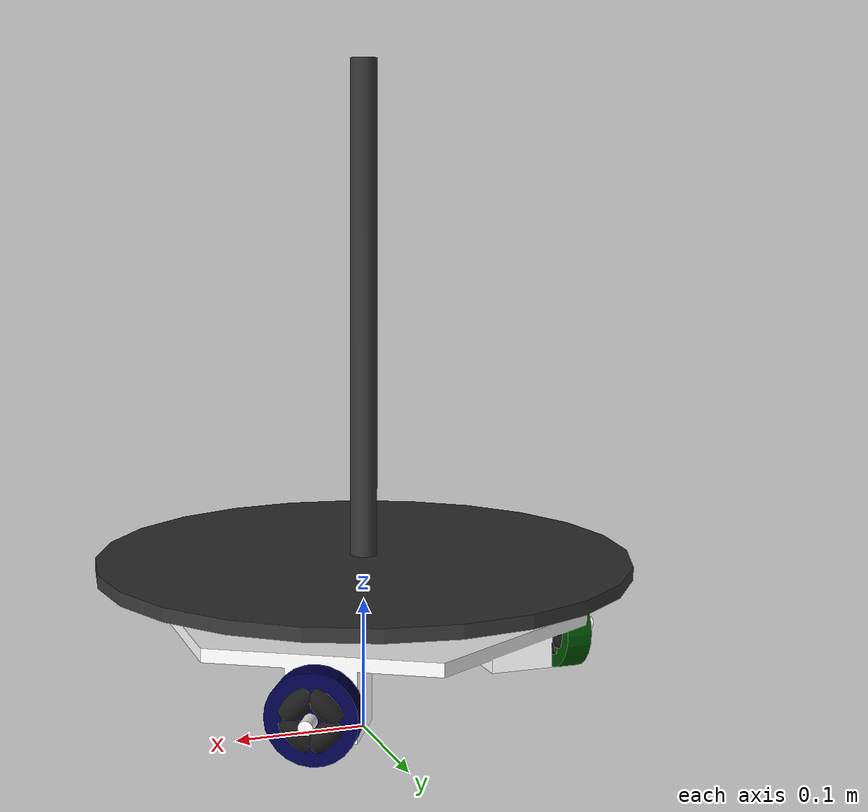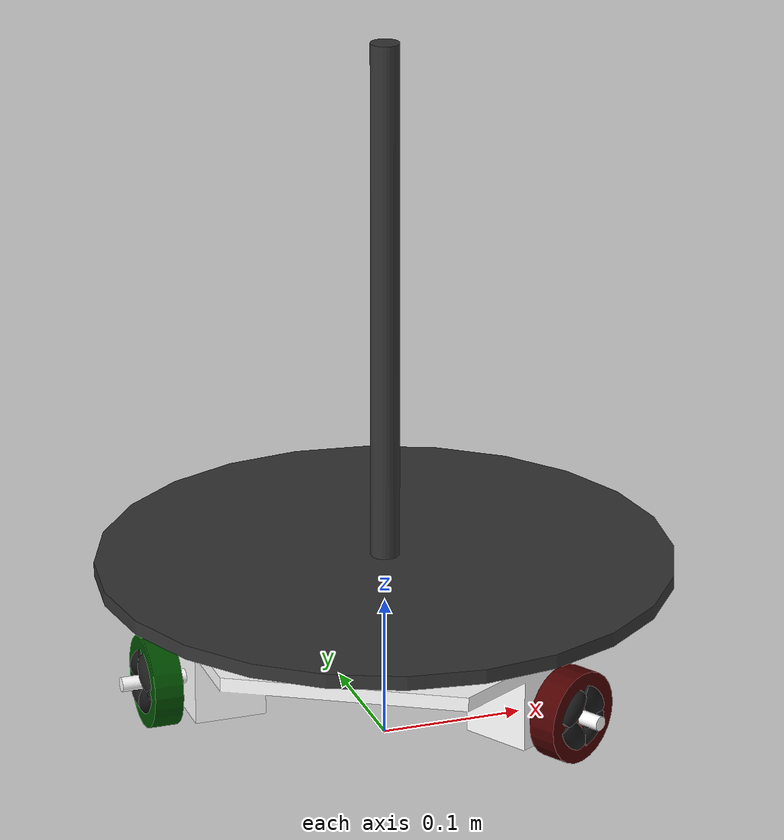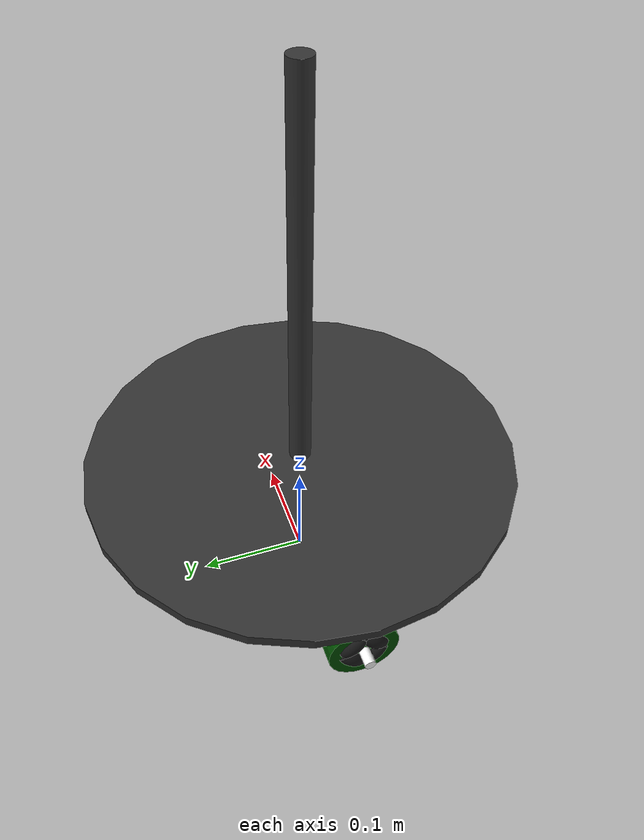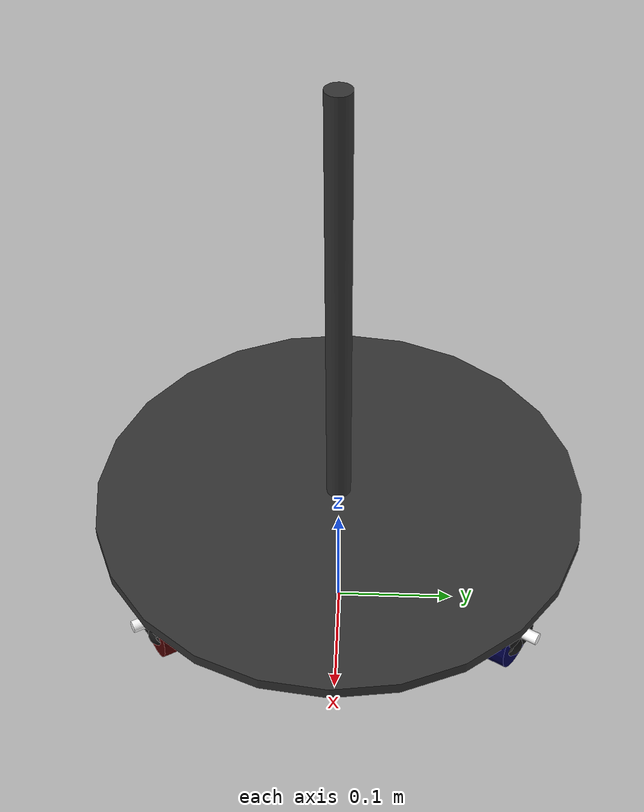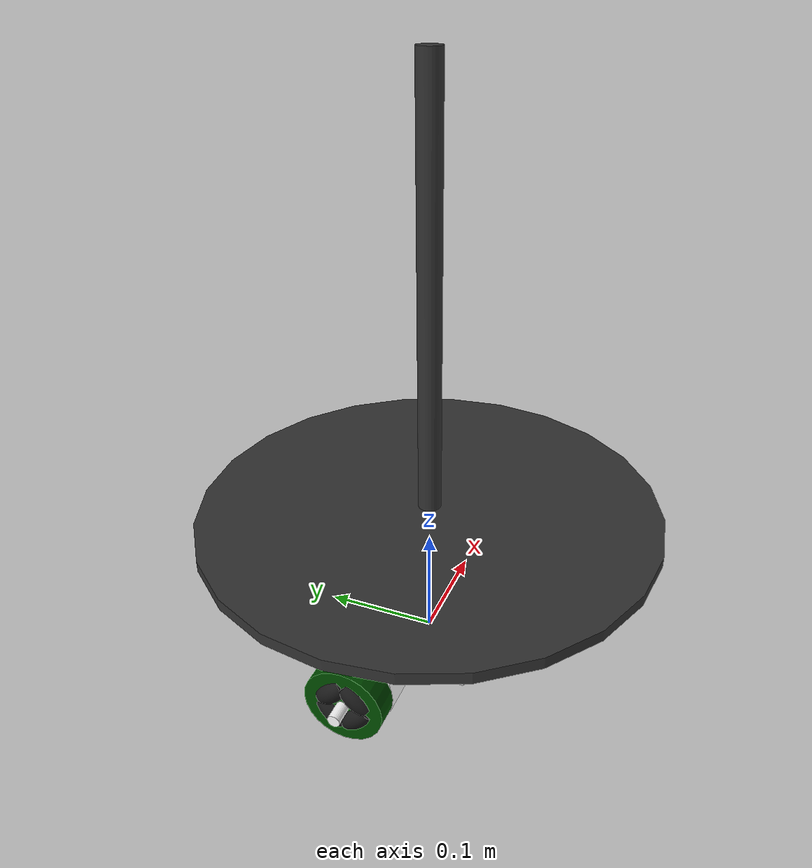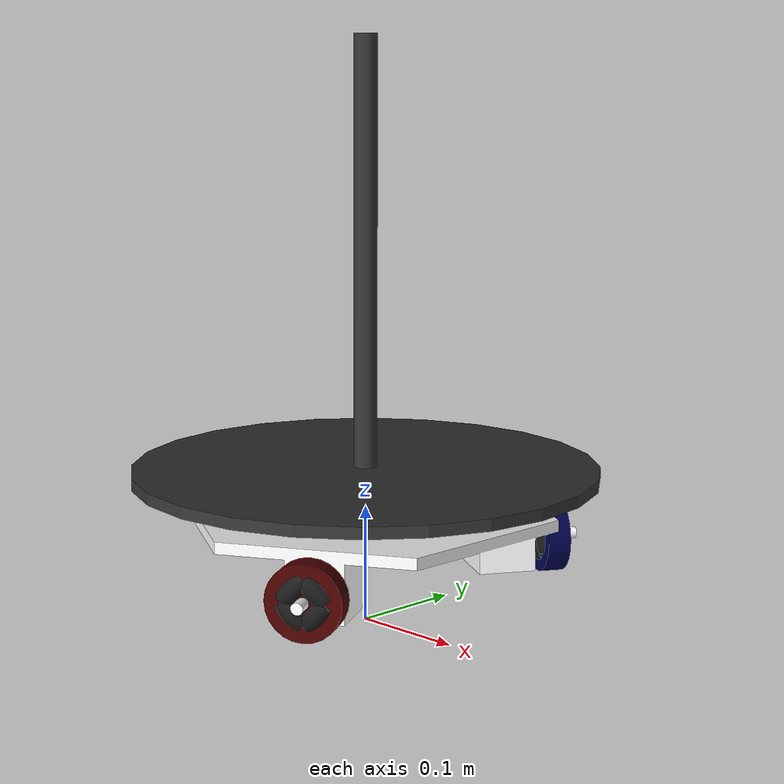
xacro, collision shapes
<?xml version="1.0"?>
<robot xmlns:xacro="http://www.ros.org/wiki/xacro" name="triskarino">

	<xacro:include filename="$(find triskarino_description)/urdf/rim.urdf.xacro"/>
    <xacro:include filename="$(find triskarino_description)/urdf/base.urdf.xacro"/>
    <xacro:include filename="$(find triskarino_description)/urdf/triskarino_cylinder.xacro"/>
    <xacro:include filename="$(find triskarino_description)/urdf/materials.xacro"/>
    <xacro:include filename="$(find triskarino_description)/urdf/hokuyo.xacro"/>

    <link name="base_link"/>

    <!-- BASE PLATE -->
    <xacro:base
        xyz="0 0 0.1"
        scale_factor="0.001"
        rpy="0 3.14 -1.570796326794896"
        />

    <joint name="base_footprint_joint" type="fixed">
        <parent link="base_link"/>
        <child link="base_footprint"/>
        <origin xyz="0 0 0" rpy="0 0 0"/>
    </joint>

    <link name="base_footprint"></link>

    <!-- LEFT WHEEL -->
	<xacro:rim_macro
		name="left"
		color="0.3 0 0"
		xyz="0.0825 -0.142894191624 -0.035"
		rpy="1.570796326794896 0 -2.61799387799"
        />

    <!-- BACK WHEEL -->
	<xacro:rim_macro
		name="back"
		color="0 0.3 0"
		xyz="-0.1650 0 -0.035"
		rpy="1.570796326794896 0 1.570796326794896"
        />

    <!-- RIGHT WHEEL -->
	<xacro:rim_macro
		name="right"
		color="0 0 0.3"
		xyz="0.0825 0.142894191624 -0.035"
		rpy="1.570796326794896 0 -0.52359877559"
        />

    <!-- CYLINDER USED AS AXIS FOR THE ROBOT, Z HAS TO BE ADJUSTED ACCORDING TO THE LENGTH OF THE AXIS -->
    <xacro:cylinder
        name="axis"
        xyz="0 0 0.2"
        rpy="0 0 0"
        parent="plate_link"
        color="grey"
        radius="0.01"
        length="0.4"
        mass="1"
        />

    <!-- FIRST CYLINDER SET AT THE BASE OF THE LIDAR -->
    <xacro:cylinder
        name="layer_0"
        xyz="0 0 -0.17"
        rpy="0 0 0"
        parent="axis_link"
        color="grey"
        radius="0.2"
        length="0.01"
        mass="1"
        />

    <xacro:hokuyo_ust10_mount
        topic="scan"
        parent_link="layer_0_link"
        xyz="0.11 0 0"
        rpy="0 0 0"
    />

    <link name="imu_link">
    </link>
    <joint
        name="imu_joint"
        type="fixed">
        <origin
          xyz="0 0 0"
          rpy="0 0 0" />
        <parent
          link="laser_mount" />
        <child
          link="imu_link" />
        <axis
          xyz="0 0 0" />
      </joint>

    <joint name="camera_joint" type="fixed">
        <parent link="layer_0_link"/>
        <child link="camera_link"/>
        <origin xyz="0.2 0 0" rpy="0 0 0"/>
    </joint>

    <link name="camera_link">
        <visual>
            <geometry>
                <box size="0.010 0.03 0.03"/>
            </geometry>
            <material name="red"/>
        </visual>
    </link>

	<gazebo reference="plate_link">
    		<material>Gazebo/White</material>
  	</gazebo>

    <gazebo reference="base_link">
		<mu1 value="0.0"/>
		<mu2 value="0.0"/>
  	</gazebo>

	<gazebo>
        <plugin name="triskarino_controller" filename="libgazebo_ros_planar_move.so">
            <commandTopic>/cmd_vel</commandTopic>
            <odometryTopic>/odom</odometryTopic>
            <odometryFrame>/odom</odometryFrame>
            <odometryRate>0</odometryRate>
            <robotBaseFrame>base_link</robotBaseFrame>
        </plugin>

    </gazebo>

</robot>

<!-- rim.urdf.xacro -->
<robot xmlns:xacro="http://www.ros.org/wiki/xacro">

<xacro:include filename="$(find triskarino_description)/urdf/roller.urdf.xacro"/>
<xacro:include filename="$(find triskarino_description)/urdf/inertial_macros.xacro"/>

<xacro:macro
	name="rim_macro"
	params="name color xyz rpy">

		<joint name="rim_${name}_joint" type="fixed">
			<parent link="plate_link" />
			<child link="rim_${name}_link"/>
			<axis xyz="0 0 1"/>
			<origin xyz="${xyz}" rpy="${rpy}"/>

		</joint>

		<link name="rim_${name}_link">
			<inertial>
				<origin xyz="-0.00000435 -0.00000262 -0.00011790"/>
				<mass value="0.20000000"/>
				<inertia ixx="0.00005620" ixy="-0.00000000" ixz="0.00000000" iyy="0.00005620" iyz="-0.00000000" izz="0.00007735"/>
			  </inertial>
			<visual>
				<geometry>
					<mesh filename="package://triskarino_description/meshes/rim_scaled.stl"/>
				</geometry>
				<material name="rim_${name}_material">
					<color rgba="${color} 1"/>
				</material>
			</visual>
			<collision>
				<origin xyz="0 0 0" rpy="0 0 0" />
				<geometry>
					<cylinder length="0.02" radius="0.032" />
				</geometry>
				<surface>
					<bounce restitution_coefficient="0.0001" />
				</surface>
			</collision>
		</link>

		<xacro:roller_macro
			parent="rim_${name}_link"
			name="e"
			xyz="0.01355 0 0.0055"
			rpy="-1.570796326794896 0 0"
		/>
		<xacro:roller_macro
			parent="rim_${name}_link"
			name="ne"
			xyz="0.00958129689 0.00958129689 -0.0055"
			rpy="-1.570796326794896 0 0.7853981633974483"
		/>
		<xacro:roller_macro
			parent="rim_${name}_link"
			name="n"
			xyz="0 0.01355 0.0055"
			rpy="-1.570796326794896 0 1.570796326794896"
		/>
		<xacro:roller_macro
			parent="rim_${name}_link"
			name="nw"
			xyz="-0.00958129689 0.00958129689 -0.0055"
			rpy="-1.570796326794896 0 2.356194490192345"
		/>
		<xacro:roller_macro
			parent="rim_${name}_link"
			name="w"
			xyz="-0.01355 0 0.0055"
			rpy="-1.570796326794896 0 3.141592653589793"
		/>
		<xacro:roller_macro
			parent="rim_${name}_link"
			name="sw"
			xyz="-0.00958129689 -0.00958129689 -0.0055"
			rpy="-1.570796326794896 0 -2.356194490192345"
		/>
		<xacro:roller_macro
			parent="rim_${name}_link"
			name="s"
			xyz="0 -0.01355 0.0055"
			rpy="-1.570796326794896 0 -1.570796326794896"
		/>
		<xacro:roller_macro
			parent="rim_${name}_link"
			name="se"
			xyz="0.00958129689 -0.00958129689 -0.0055"
			rpy="-1.570796326794896 0 -0.7853981633974483"
		/>

		<transmission name="rim_${name}_transmission">
			<type>transmission_interface/SimpleTransmission</type>
			<joint name="rim_${name}_joint">
				<hardwareInterface>hardware_interface/VelocityJointInterface</hardwareInterface>
			</joint>
			<actuator name="rim_${name}_motor">
				<hardwareInterface>hardware_interface/VelocityJointInterface</hardwareInterface>
				<mechanicalReduction>1</mechanicalReduction>
			</actuator>
		</transmission>

	<gazebo reference="rim_${name}_link">
		<collision name="rim_${name}_link_collision">
			<surface>
			  <contact>
                <ode>
                  <kp>1e+6</kp>
                  <kd>1</kd>
                  <min_depth>0.00001</min_depth>
                </ode>
			  </contact>
			  <friction>
				<ode>
				<mu>0</mu>
				<mu2>0</mu2>
				<max_contacts>2</max_contacts>
				<fdir1>0 0 1</fdir1>
				<slip1>1</slip1>
				<slip2>1</slip2>
				</ode>
			  </friction>
			</surface>
		  </collision>
  	</gazebo>

	</xacro:macro>

</robot>

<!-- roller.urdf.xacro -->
<robot xmlns:xacro="http://www.ros.org/wiki/xacro">

<!-- SCALING OF MASS AND INERTIAL MATRICES ACCORDING TO https://answers.ros.org/question/237421/calculating-inertial-matrix-for-gazebo/ -->
<xacro:macro
	name="roller_macro"
	params="parent name xyz rpy">

		<link name="roller_${name}_${parent}_link">
			<inertial>
				<origin xyz="0.00000004 -0.00000000 -0.00000002"/>
				<mass value="0.05000000"/>
				<inertia ixx="0.00000328" ixy="0.00000000" ixz="-0.00000000" iyy="0.00000328" iyz="-0.00000000" izz="0.00000191"/>
			  </inertial>
			<visual>
				<geometry>
					<mesh filename="package://triskarino_description/meshes/roller_scaled.stl"/>
				</geometry>
				<material name="roller_material">
					<color rgba="0.1 0.1 0.1 1"/>
				</material>
			</visual>
			<collision>
				<geometry>
					<mesh filename="package://triskarino_description/meshes/roller_scaled.stl"/>
				</geometry>
			</collision>
		</link>
	<gazebo reference="roller_${name}_{parent}">
    		<material>Gazebo/Black</material>
  	</gazebo>
		<joint name="roller_${name}_${parent}_joint" type="fixed">
			<parent link="${parent}"/>
			<child link="roller_${name}_${parent}_link"/>
			<axis xyz="0 0 1"/>
			<origin xyz="${xyz}" rpy="${rpy}"/>

		</joint>
		<gazebo reference="roller_${name}_${parent}_link">
			<mu1 value="0.0"/>
			<mu2 value="0.0"/>
			<minDepth>0.001</minDepth>
			<kp value="1000000"/>
			<kd value="1"/>
			<maxContacts value= "0"/>

		</gazebo>
	</xacro:macro>

</robot>

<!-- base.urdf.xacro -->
<robot xmlns:xacro="http://www.ros.org/wiki/xacro" >

<xacro:macro name="base" params="xyz rpy scale_factor">
    <link name="plate_link">
		<inertial>
			<origin xyz="0.00000000 0.00000000 33.57142844"/>
			<mass value="1.00000000"/>
			<inertia ixx="6092.55688578" ixy="-0.00000000" ixz="0.00000000" iyy="6092.55696749" iyz="0.00000265" izz="11631.80010839"/>
		  </inertial>
	<visual>
		<geometry>
			<mesh scale="${scale_factor} ${scale_factor} ${scale_factor}" filename="package://triskarino_description/meshes/robot_base.stl"/>
		</geometry>
		<material name="base_material">
			<color rgba="1 1 1 1"/>
		</material>
        <origin rpy="${rpy}"/>
	</visual>
	<collision>
		<geometry>
			<mesh scale="${scale_factor} ${scale_factor} ${scale_factor}" filename="package://triskarino_description/meshes/robot_base.stl"/>
		</geometry>
         <origin rpy="${rpy}"/>
	</collision>

	</link>
	<joint name="plate_joint" type="fixed">
		<parent link="base_link" />
		<child link="plate_link" />
		<origin xyz="${xyz}"  rpy="0 0 0"/>
	</joint>

	<gazebo reference="plate_link">
		<mu1 value="0.0"/>
		<mu2 value="0.0"/>
		<kp value="1000000"/>
		<kd value="1"/>
		<implicitSpringDamper>true</implicitSpringDamper>
		<implicitSpringDamper>true</implicitSpringDamper>
		<maxContacts value= "0"/>

  	</gazebo>

</xacro:macro>

</robot>

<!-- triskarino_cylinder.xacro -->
<robot xmlns:xacro="http://www.ros.org/wiki/xacro" >

<xacro:include filename="$(find triskarino_description)/urdf/inertial_macros.xacro"/>

<xacro:macro name="cylinder" params="xyz name rpy parent color radius length mass">

    <joint name="${name}_joint" type="fixed">
        <parent link="${parent}"/>
        <child link="${name}_link"/>
        <origin xyz="${xyz}" rpy="${rpy}" />
    </joint>

    <link name="${name}_link">
        <visual>
            <geometry>
                <cylinder radius="${radius}" length="${length}"/>
            </geometry>
            <material name="${color}"/>
        </visual>
        <collision>
            <geometry>
                <cylinder radius="${radius}" length="${length}"/>
            </geometry>
        </collision>
        <xacro:inertial_cylinder mass="${mass}" length="${length}" radius="${radius}">
            <origin xyz="0 0 0" rpy="0 0 0"/>
        </xacro:inertial_cylinder>
    </link>

</xacro:macro>

</robot>

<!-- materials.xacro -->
<robot xmlns:xacro="http://www.ros.org/wiki/xacro" >

  <material name="black">
    <color rgba="0.0 0.0 0.0 1.0"/>
  </material>

  <material name="blue">
    <color rgba="0.0 0.0 0.8 1.0"/>
  </material>

  <material name="green">
    <color rgba="0.0 0.8 0.0 1.0"/>
  </material>

  <material name="grey">
    <color rgba="0.2 0.2 0.2 1.0"/>
  </material>

  <material name="orange">
    <color rgba="${255/255} ${108/255} ${10/255} 1.0"/>
  </material>

  <material name="dark_grey">
    <color rgba="${220/255} ${220/255} ${220/255} 1.0"/>
  </material>

  <material name="brown">
    <color rgba="${222/255} ${207/255} ${195/255} 1.0"/>
  </material>

  <material name="red">
    <color rgba="0.8 0.0 0.0 1.0"/>
  </material>

  <material name="white">
    <color rgba="1.0 1.0 1.0 1.0"/>
  </material>

</robot>

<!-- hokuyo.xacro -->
<robot xmlns:xacro="http://ros.org/wiki/xacro">
  <xacro:macro name="hokuyo_ust10_mount" params="topic parent_link min_angle:=-2.0944 max_angle:=2.0944 xyz rpy">

    <xacro:macro name="hokuyo_ust10" params="frame:=laser topic:=scan sample_size:=720 update_rate:=10.0
               min_angle:=${min_angle} max_angle:=${max_angle} min_range:=0.01 max_range:=30 robot_namespace:=triskarino ">
      <link name="laser">
        <inertial>
          <mass value="1.1" />
          <origin xyz="0 0 0" />
          <inertia ixx="${0.0833333 * 1.1 * (0.102*0.102 + 0.152*0.152)}" ixy="0.0" ixz="0.0"
            iyy="${0.0833333 * 1.1 * (0.105*0.105 + 0.152*0.152)}" iyz="0.0"
            izz="${0.0833333 * 1.1 * (0.105*0.105 + 0.102*0.102)}" />
        </inertial>
      </link>

      <gazebo reference="laser">
        <turnGravityOff>true</turnGravityOff>
        <sensor type="ray" name="${frame}">
          <pose>0 0 0 0 0 0</pose>
          <visualize>true</visualize>
          <update_rate>${update_rate}</update_rate>
          <ray>
            <scan>
              <horizontal>
                <samples>${sample_size}</samples>
                <resolution>1</resolution>
                <min_angle>${min_angle}</min_angle>
                <max_angle>${max_angle}</max_angle>
              </horizontal>
            </scan>
            <range>
              <min>${min_range}</min>
              <max>${max_range}</max>
              <resolution>0.01</resolution>
            </range>
            <noise>
              <type>gaussian</type>
              <mean>0.0</mean>
              <stddev>0.001</stddev>
            </noise>
          </ray>
          <plugin name="laser_controller" filename="libgazebo_ros_laser.so">
            <tf_prefix></tf_prefix>
            <frameName>${frame}</frameName>
            <topicName>${topic}</topicName>
            <robotNamespace>triskarino</robotNamespace>

          </plugin>
        </sensor>
      </gazebo>
    </xacro:macro>

    <xacro:hokuyo_ust10 frame="laser" topic="${topic}"/>

    <joint name="laser_mount_joint" type="fixed">
      <origin xyz="${xyz}" rpy="${rpy}" />
      <parent link="${parent_link}" />
      <child link="laser_mount" />
    </joint>

    <link name="laser_mount">
      <visual>
        <origin xyz="0 0 0" rpy="0 0 0" />
        <geometry>
          <!-- Origin of this mesh is the base of the bracket. -->
          <mesh filename="package://triskarino_description/meshes/hokuyo_ust10.stl" />
        </geometry>
        <material name="dark_grey" />
      </visual>
    </link>

    <joint name="laser_joint" type="fixed">
      <!-- This offset is from the base of the bracket to the LIDAR's focal point. -->
      <origin xyz="0 0 0.0474" rpy="0 0 0" />
      <parent link="laser_mount" />
      <child link="laser" />
    </joint>

    <!-- Fix to make rviz laserscan work! -->

    <gazebo reference="laser_mount">
      <material>Gazebo/DarkGrey</material>
    </gazebo>

  </xacro:macro>

</robot>
